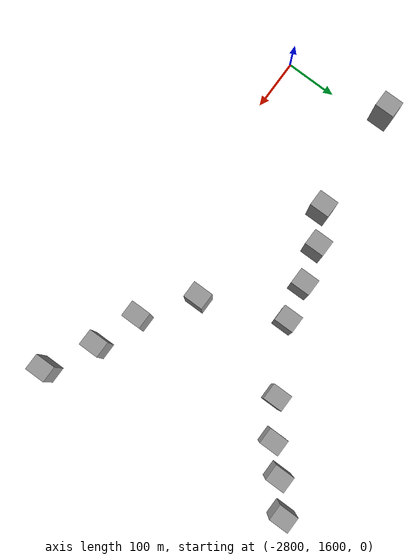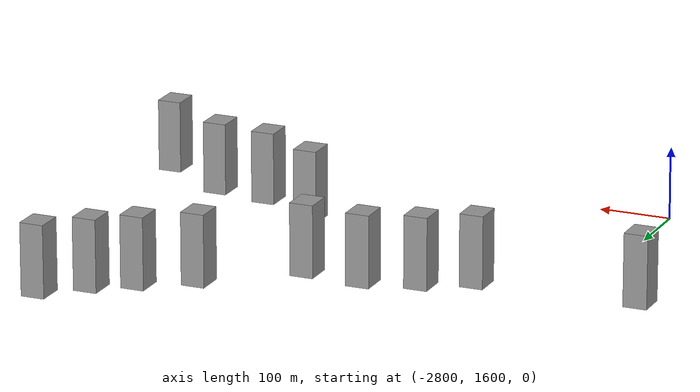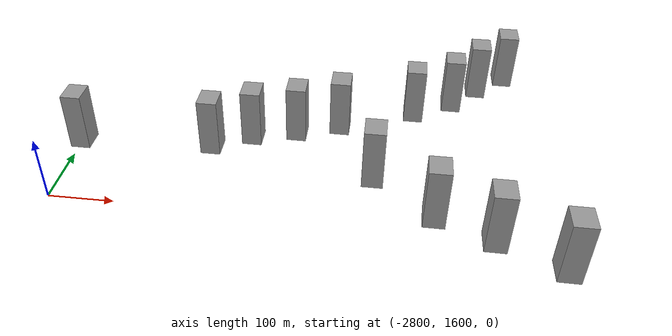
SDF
<sdf version="1.7">
 <world name="default">
  <model name="huge_building_72">
   <link name="link">
    <inertial>
     <mass>137299</mass>
     <inertia>
      <ixx>1.37911e+08</ixx>
      <ixy>0</ixy>
      <ixz>0</ixz>
      <iyy>1.32035e+08</iyy>
      <iyz>0</iyz>
      <izz>3.13216e+07</izz>
     </inertia>
    </inertial>
    <visual name="visual">
     <geometry><box><size>33.3468 40.3177 102.117</size></box></geometry>
     <material>
      <script><name>Gazebo/Grey</name><uri>file://media/materials/scripts/gazebo.material</uri></script>
      <shader type="pixel"/>
     </material>
    </visual>
    <collision name="collision">
     <geometry><box><size>33.3468 40.3177 102.117</size></box></geometry>
     <surface>
      <friction>
       <ode><mu>1</mu><mu2>1</mu2><fdir1>0 0 0</fdir1><slip1>0</slip1><slip2>0</slip2></ode>
       <torsional>
        <coefficient>1</coefficient>
        <patch_radius>0</patch_radius>
        <surface_radius>0</surface_radius>
        <use_patch_radius>1</use_patch_radius>
        <ode><slip>0</slip></ode>
       </torsional>
      </friction>
      <bounce><restitution_coefficient>0</restitution_coefficient><threshold>1e+06</threshold></bounce>
      <contact>
       <collide_without_contact>0</collide_without_contact>
       <collide_without_contact_bitmask>1</collide_without_contact_bitmask>
       <collide_bitmask>1</collide_bitmask>
       <ode>
        <soft_cfm>0</soft_cfm>
        <soft_erp>0.2</soft_erp>
        <kp>1e+13</kp>
        <kd>1</kd>
        <max_vel>0.01</max_vel>
        <min_depth>0</min_depth>
       </ode>
       <bullet>
        <split_impulse>1</split_impulse>
        <split_impulse_penetration_threshold>-0.01</split_impulse_penetration_threshold>
        <soft_cfm>0</soft_cfm>
        <soft_erp>0.2</soft_erp>
        <kp>1e+13</kp>
        <kd>1</kd>
       </bullet>
      </contact>
     </surface>
    </collision>
   </link>
   <static>0</static>
   <pose>-2097.48 2090.02 5 0 -0 0</pose>
  </model>
  <model name="huge_building_73">
   <link name="link">
    <inertial>
     <mass>137299</mass>
     <inertia>
      <ixx>1.37911e+08</ixx>
      <ixy>0</ixy>
      <ixz>0</ixz>
      <iyy>1.32035e+08</iyy>
      <iyz>0</iyz>
      <izz>3.13216e+07</izz>
     </inertia>
    </inertial>
    <visual name="visual">
     <geometry><box><size>33.3468 40.3177 102.117</size></box></geometry>
     <material>
      <script><name>Gazebo/Grey</name><uri>file://media/materials/scripts/gazebo.material</uri></script>
      <shader type="pixel"/>
     </material>
    </visual>
    <collision name="collision">
     <geometry><box><size>33.3468 40.3177 102.117</size></box></geometry>
     <surface>
      <friction>
       <ode><mu>1</mu><mu2>1</mu2><fdir1>0 0 0</fdir1><slip1>0</slip1><slip2>0</slip2></ode>
       <torsional>
        <coefficient>1</coefficient>
        <patch_radius>0</patch_radius>
        <surface_radius>0</surface_radius>
        <use_patch_radius>1</use_patch_radius>
        <ode><slip>0</slip></ode>
       </torsional>
      </friction>
      <bounce><restitution_coefficient>0</restitution_coefficient><threshold>1e+06</threshold></bounce>
      <contact>
       <collide_without_contact>0</collide_without_contact>
       <collide_without_contact_bitmask>1</collide_without_contact_bitmask>
       <collide_bitmask>1</collide_bitmask>
       <ode>
        <soft_cfm>0</soft_cfm>
        <soft_erp>0.2</soft_erp>
        <kp>1e+13</kp>
        <kd>1</kd>
        <max_vel>0.01</max_vel>
        <min_depth>0</min_depth>
       </ode>
       <bullet>
        <split_impulse>1</split_impulse>
        <split_impulse_penetration_threshold>-0.01</split_impulse_penetration_threshold>
        <soft_cfm>0</soft_cfm>
        <soft_erp>0.2</soft_erp>
        <kp>1e+13</kp>
        <kd>1</kd>
       </bullet>
      </contact>
     </surface>
    </collision>
   </link>
   <static>0</static>
   <pose>-2150.63 2042.82 5 0 -0 0</pose>
  </model>
  <model name="huge_building_111">
   <link name="link">
    <inertial>
     <mass>137299</mass>
     <inertia>
      <ixx>1.37911e+08</ixx>
      <ixy>0</ixy>
      <ixz>0</ixz>
      <iyy>1.32035e+08</iyy>
      <iyz>0</iyz>
      <izz>3.13216e+07</izz>
     </inertia>
    </inertial>
    <visual name="visual">
     <geometry><box><size>33.3468 40.3177 102.117</size></box></geometry>
     <material>
      <script><name>Gazebo/Grey</name><uri>file://media/materials/scripts/gazebo.material</uri></script>
      <shader type="pixel"/>
     </material>
    </visual>
    <collision name="collision">
     <geometry><box><size>33.3468 40.3177 102.117</size></box></geometry>
     <surface>
      <friction>
       <ode><mu>1</mu><mu2>1</mu2><fdir1>0 0 0</fdir1><slip1>0</slip1><slip2>0</slip2></ode>
       <torsional>
        <coefficient>1</coefficient>
        <patch_radius>0</patch_radius>
        <surface_radius>0</surface_radius>
        <use_patch_radius>1</use_patch_radius>
        <ode><slip>0</slip></ode>
       </torsional>
      </friction>
      <bounce><restitution_coefficient>0</restitution_coefficient><threshold>1e+06</threshold></bounce>
      <contact>
       <collide_without_contact>0</collide_without_contact>
       <collide_without_contact_bitmask>1</collide_without_contact_bitmask>
       <collide_bitmask>1</collide_bitmask>
       <ode>
        <soft_cfm>0</soft_cfm>
        <soft_erp>0.2</soft_erp>
        <kp>1e+13</kp>
        <kd>1</kd>
        <max_vel>0.01</max_vel>
        <min_depth>0</min_depth>
       </ode>
       <bullet>
        <split_impulse>1</split_impulse>
        <split_impulse_penetration_threshold>-0.01</split_impulse_penetration_threshold>
        <soft_cfm>0</soft_cfm>
        <soft_erp>0.2</soft_erp>
        <kp>1e+13</kp>
        <kd>1</kd>
       </bullet>
      </contact>
     </surface>
    </collision>
   </link>
   <static>0</static>
   <pose>-2197.2 1996.35 0 0 -0 0</pose>
  </model>
  <model name="huge_building_112">
   <link name="link">
    <inertial>
     <mass>137299</mass>
     <inertia>
      <ixx>1.37911e+08</ixx>
      <ixy>0</ixy>
      <ixz>0</ixz>
      <iyy>1.32035e+08</iyy>
      <iyz>0</iyz>
      <izz>3.13216e+07</izz>
     </inertia>
    </inertial>
    <visual name="visual">
     <geometry><box><size>33.3468 40.3177 102.117</size></box></geometry>
     <material>
      <script><name>Gazebo/Grey</name><uri>file://media/materials/scripts/gazebo.material</uri></script>
      <shader type="pixel"/>
     </material>
    </visual>
    <collision name="collision">
     <geometry><box><size>33.3468 40.3177 102.117</size></box></geometry>
     <surface>
      <friction>
       <ode><mu>1</mu><mu2>1</mu2><fdir1>0 0 0</fdir1><slip1>0</slip1><slip2>0</slip2></ode>
       <torsional>
        <coefficient>1</coefficient>
        <patch_radius>0</patch_radius>
        <surface_radius>0</surface_radius>
        <use_patch_radius>1</use_patch_radius>
        <ode><slip>0</slip></ode>
       </torsional>
      </friction>
      <bounce><restitution_coefficient>0</restitution_coefficient><threshold>1e+06</threshold></bounce>
      <contact>
       <collide_without_contact>0</collide_without_contact>
       <collide_without_contact_bitmask>1</collide_without_contact_bitmask>
       <collide_bitmask>1</collide_bitmask>
       <ode>
        <soft_cfm>0</soft_cfm>
        <soft_erp>0.2</soft_erp>
        <kp>1e+13</kp>
        <kd>1</kd>
        <max_vel>0.01</max_vel>
        <min_depth>0</min_depth>
       </ode>
       <bullet>
        <split_impulse>1</split_impulse>
        <split_impulse_penetration_threshold>-0.01</split_impulse_penetration_threshold>
        <soft_cfm>0</soft_cfm>
        <soft_erp>0.2</soft_erp>
        <kp>1e+13</kp>
        <kd>1</kd>
       </bullet>
      </contact>
     </surface>
    </collision>
   </link>
   <static>0</static>
   <pose>-2265.9 1954.4 0 0 -0 0</pose>
  </model>
  <model name="huge_building_113">
   <link name="link">
    <inertial>
     <mass>137299</mass>
     <inertia>
      <ixx>1.37911e+08</ixx>
      <ixy>0</ixy>
      <ixz>0</ixz>
      <iyy>1.32035e+08</iyy>
      <iyz>0</iyz>
      <izz>3.13216e+07</izz>
     </inertia>
    </inertial>
    <visual name="visual">
     <geometry><box><size>33.3468 40.3177 102.117</size></box></geometry>
     <material>
      <script><name>Gazebo/Grey</name><uri>file://media/materials/scripts/gazebo.material</uri></script>
      <shader type="pixel"/>
     </material>
    </visual>
    <collision name="collision">
     <geometry><box><size>33.3468 40.3177 102.117</size></box></geometry>
     <surface>
      <friction>
       <ode><mu>1</mu><mu2>1</mu2><fdir1>0 0 0</fdir1><slip1>0</slip1><slip2>0</slip2></ode>
       <torsional>
        <coefficient>1</coefficient>
        <patch_radius>0</patch_radius>
        <surface_radius>0</surface_radius>
        <use_patch_radius>1</use_patch_radius>
        <ode><slip>0</slip></ode>
       </torsional>
      </friction>
      <bounce><restitution_coefficient>0</restitution_coefficient><threshold>1e+06</threshold></bounce>
      <contact>
       <collide_without_contact>0</collide_without_contact>
       <collide_without_contact_bitmask>1</collide_without_contact_bitmask>
       <collide_bitmask>1</collide_bitmask>
       <ode>
        <soft_cfm>0</soft_cfm>
        <soft_erp>0.2</soft_erp>
        <kp>1e+13</kp>
        <kd>1</kd>
        <max_vel>0.01</max_vel>
        <min_depth>0</min_depth>
       </ode>
       <bullet>
        <split_impulse>1</split_impulse>
        <split_impulse_penetration_threshold>-0.01</split_impulse_penetration_threshold>
        <soft_cfm>0</soft_cfm>
        <soft_erp>0.2</soft_erp>
        <kp>1e+13</kp>
        <kd>1</kd>
       </bullet>
      </contact>
     </surface>
    </collision>
   </link>
   <static>0</static>
   <pose>-2392.93 1885.83 9 0 -0 0</pose>
  </model>
  <model name="huge_building_114">
   <link name="link">
    <inertial>
     <mass>137299</mass>
     <inertia>
      <ixx>1.37911e+08</ixx>
      <ixy>0</ixy>
      <ixz>0</ixz>
      <iyy>1.32035e+08</iyy>
      <iyz>0</iyz>
      <izz>3.13216e+07</izz>
     </inertia>
    </inertial>
    <visual name="visual">
     <geometry><box><size>33.3468 40.3177 102.117</size></box></geometry>
     <material>
      <script><name>Gazebo/Grey</name><uri>file://media/materials/scripts/gazebo.material</uri></script>
      <shader type="pixel"/>
     </material>
    </visual>
    <collision name="collision">
     <geometry><box><size>33.3468 40.3177 102.117</size></box></geometry>
     <surface>
      <friction>
       <ode><mu>1</mu><mu2>1</mu2><fdir1>0 0 0</fdir1><slip1>0</slip1><slip2>0</slip2></ode>
       <torsional>
        <coefficient>1</coefficient>
        <patch_radius>0</patch_radius>
        <surface_radius>0</surface_radius>
        <use_patch_radius>1</use_patch_radius>
        <ode><slip>0</slip></ode>
       </torsional>
      </friction>
      <bounce><restitution_coefficient>0</restitution_coefficient><threshold>1e+06</threshold></bounce>
      <contact>
       <collide_without_contact>0</collide_without_contact>
       <collide_without_contact_bitmask>1</collide_without_contact_bitmask>
       <collide_bitmask>1</collide_bitmask>
       <ode>
        <soft_cfm>0</soft_cfm>
        <soft_erp>0.2</soft_erp>
        <kp>1e+13</kp>
        <kd>1</kd>
        <max_vel>0.01</max_vel>
        <min_depth>0</min_depth>
       </ode>
       <bullet>
        <split_impulse>1</split_impulse>
        <split_impulse_penetration_threshold>-0.01</split_impulse_penetration_threshold>
        <soft_cfm>0</soft_cfm>
        <soft_erp>0.2</soft_erp>
        <kp>1e+13</kp>
        <kd>1</kd>
       </bullet>
      </contact>
     </surface>
    </collision>
   </link>
   <static>0</static>
   <pose>-2466.93 1870.23 0 0 -0 0</pose>
  </model>
  <model name="huge_building_115">
   <link name="link">
    <inertial>
     <mass>137299</mass>
     <inertia>
      <ixx>1.37911e+08</ixx>
      <ixy>0</ixy>
      <ixz>0</ixz>
      <iyy>1.32035e+08</iyy>
      <iyz>0</iyz>
      <izz>3.13216e+07</izz>
     </inertia>
    </inertial>
    <visual name="visual">
     <geometry><box><size>33.3468 40.3177 102.117</size></box></geometry>
     <material>
      <script><name>Gazebo/Grey</name><uri>file://media/materials/scripts/gazebo.material</uri></script>
      <shader type="pixel"/>
     </material>
    </visual>
    <collision name="collision">
     <geometry><box><size>33.3468 40.3177 102.117</size></box></geometry>
     <surface>
      <friction>
       <ode><mu>1</mu><mu2>1</mu2><fdir1>0 0 0</fdir1><slip1>0</slip1><slip2>0</slip2></ode>
       <torsional>
        <coefficient>1</coefficient>
        <patch_radius>0</patch_radius>
        <surface_radius>0</surface_radius>
        <use_patch_radius>1</use_patch_radius>
        <ode><slip>0</slip></ode>
       </torsional>
      </friction>
      <bounce><restitution_coefficient>0</restitution_coefficient><threshold>1e+06</threshold></bounce>
      <contact>
       <collide_without_contact>0</collide_without_contact>
       <collide_without_contact_bitmask>1</collide_without_contact_bitmask>
       <collide_bitmask>1</collide_bitmask>
       <ode>
        <soft_cfm>0</soft_cfm>
        <soft_erp>0.2</soft_erp>
        <kp>1e+13</kp>
        <kd>1</kd>
        <max_vel>0.01</max_vel>
        <min_depth>0</min_depth>
       </ode>
       <bullet>
        <split_impulse>1</split_impulse>
        <split_impulse_penetration_threshold>-0.01</split_impulse_penetration_threshold>
        <soft_cfm>0</soft_cfm>
        <soft_erp>0.2</soft_erp>
        <kp>1e+13</kp>
        <kd>1</kd>
       </bullet>
      </contact>
     </surface>
    </collision>
   </link>
   <static>0</static>
   <pose>-2541.24 1848.61 0 0 -0 0</pose>
  </model>
  <model name="huge_building_116">
   <link name="link">
    <inertial>
     <mass>137299</mass>
     <inertia>
      <ixx>1.37911e+08</ixx>
      <ixy>0</ixy>
      <ixz>0</ixz>
      <iyy>1.32035e+08</iyy>
      <iyz>0</iyz>
      <izz>3.13216e+07</izz>
     </inertia>
    </inertial>
    <visual name="visual">
     <geometry><box><size>33.3468 40.3177 102.117</size></box></geometry>
     <material>
      <script><name>Gazebo/Grey</name><uri>file://media/materials/scripts/gazebo.material</uri></script>
      <shader type="pixel"/>
     </material>
    </visual>
    <collision name="collision">
     <geometry><box><size>33.3468 40.3177 102.117</size></box></geometry>
     <surface>
      <friction>
       <ode><mu>1</mu><mu2>1</mu2><fdir1>0 0 0</fdir1><slip1>0</slip1><slip2>0</slip2></ode>
       <torsional>
        <coefficient>1</coefficient>
        <patch_radius>0</patch_radius>
        <surface_radius>0</surface_radius>
        <use_patch_radius>1</use_patch_radius>
        <ode><slip>0</slip></ode>
       </torsional>
      </friction>
      <bounce><restitution_coefficient>0</restitution_coefficient><threshold>1e+06</threshold></bounce>
      <contact>
       <collide_without_contact>0</collide_without_contact>
       <collide_without_contact_bitmask>1</collide_without_contact_bitmask>
       <collide_bitmask>1</collide_bitmask>
       <ode>
        <soft_cfm>0</soft_cfm>
        <soft_erp>0.2</soft_erp>
        <kp>1e+13</kp>
        <kd>1</kd>
        <max_vel>0.01</max_vel>
        <min_depth>0</min_depth>
       </ode>
       <bullet>
        <split_impulse>1</split_impulse>
        <split_impulse_penetration_threshold>-0.01</split_impulse_penetration_threshold>
        <soft_cfm>0</soft_cfm>
        <soft_erp>0.2</soft_erp>
        <kp>1e+13</kp>
        <kd>1</kd>
       </bullet>
      </contact>
     </surface>
    </collision>
   </link>
   <static>0</static>
   <pose>-2606.31 1813.32 0 0 -0 0</pose>
  </model>
  <model name="huge_building_117">
   <link name="link">
    <inertial>
     <mass>137299</mass>
     <inertia>
      <ixx>1.37911e+08</ixx>
      <ixy>0</ixy>
      <ixz>0</ixz>
      <iyy>1.32035e+08</iyy>
      <iyz>0</iyz>
      <izz>3.13216e+07</izz>
     </inertia>
    </inertial>
    <visual name="visual">
     <geometry><box><size>33.3468 40.3177 102.117</size></box></geometry>
     <material>
      <script><name>Gazebo/Grey</name><uri>file://media/materials/scripts/gazebo.material</uri></script>
      <shader type="pixel"/>
     </material>
    </visual>
    <collision name="collision">
     <geometry><box><size>33.3468 40.3177 102.117</size></box></geometry>
     <surface>
      <friction>
       <ode><mu>1</mu><mu2>1</mu2><fdir1>0 0 0</fdir1><slip1>0</slip1><slip2>0</slip2></ode>
       <torsional>
        <coefficient>1</coefficient>
        <patch_radius>0</patch_radius>
        <surface_radius>0</surface_radius>
        <use_patch_radius>1</use_patch_radius>
        <ode><slip>0</slip></ode>
       </torsional>
      </friction>
      <bounce><restitution_coefficient>0</restitution_coefficient><threshold>1e+06</threshold></bounce>
      <contact>
       <collide_without_contact>0</collide_without_contact>
       <collide_without_contact_bitmask>1</collide_without_contact_bitmask>
       <collide_bitmask>1</collide_bitmask>
       <ode>
        <soft_cfm>0</soft_cfm>
        <soft_erp>0.2</soft_erp>
        <kp>1e+13</kp>
        <kd>1</kd>
        <max_vel>0.01</max_vel>
        <min_depth>0</min_depth>
       </ode>
       <bullet>
        <split_impulse>1</split_impulse>
        <split_impulse_penetration_threshold>-0.01</split_impulse_penetration_threshold>
        <soft_cfm>0</soft_cfm>
        <soft_erp>0.2</soft_erp>
        <kp>1e+13</kp>
        <kd>1</kd>
       </bullet>
      </contact>
     </surface>
    </collision>
   </link>
   <static>0</static>
   <pose>-2832.83 1800.72 0 0 -0 0</pose>
  </model>
  <model name="huge_building_123">
   <link name="link">
    <inertial>
     <mass>137299</mass>
     <inertia>
      <ixx>1.37911e+08</ixx>
      <ixy>0</ixy>
      <ixz>0</ixz>
      <iyy>1.32035e+08</iyy>
      <iyz>0</iyz>
      <izz>3.13216e+07</izz>
     </inertia>
    </inertial>
    <visual name="visual">
     <geometry><box><size>33.3468 40.3177 102.117</size></box></geometry>
     <material>
      <script><name>Gazebo/Grey</name><uri>file://media/materials/scripts/gazebo.material</uri></script>
      <shader type="pixel"/>
     </material>
    </visual>
    <collision name="collision">
     <geometry><box><size>33.3468 40.3177 102.117</size></box></geometry>
     <surface>
      <friction>
       <ode><mu>1</mu><mu2>1</mu2><fdir1>0 0 0</fdir1><slip1>0</slip1><slip2>0</slip2></ode>
       <torsional>
        <coefficient>1</coefficient>
        <patch_radius>0</patch_radius>
        <surface_radius>0</surface_radius>
        <use_patch_radius>1</use_patch_radius>
        <ode><slip>0</slip></ode>
       </torsional>
      </friction>
      <bounce><restitution_coefficient>0</restitution_coefficient><threshold>1e+06</threshold></bounce>
      <contact>
       <collide_without_contact>0</collide_without_contact>
       <collide_without_contact_bitmask>1</collide_without_contact_bitmask>
       <collide_bitmask>1</collide_bitmask>
       <ode>
        <soft_cfm>0</soft_cfm>
        <soft_erp>0.2</soft_erp>
        <kp>1e+13</kp>
        <kd>1</kd>
        <max_vel>0.01</max_vel>
        <min_depth>0</min_depth>
       </ode>
       <bullet>
        <split_impulse>1</split_impulse>
        <split_impulse_penetration_threshold>-0.01</split_impulse_penetration_threshold>
        <soft_cfm>0</soft_cfm>
        <soft_erp>0.2</soft_erp>
        <kp>1e+13</kp>
        <kd>1</kd>
       </bullet>
      </contact>
     </surface>
    </collision>
   </link>
   <static>0</static>
   <pose>-2053.36 1577.12 20 0 -0 0</pose>
  </model>
  <model name="huge_building_124">
   <link name="link">
    <inertial>
     <mass>137299</mass>
     <inertia>
      <ixx>1.37911e+08</ixx>
      <ixy>0</ixy>
      <ixz>0</ixz>
      <iyy>1.32035e+08</iyy>
      <iyz>0</iyz>
      <izz>3.13216e+07</izz>
     </inertia>
    </inertial>
    <visual name="visual">
     <geometry><box><size>33.3468 40.3177 102.117</size></box></geometry>
     <material>
      <script><name>Gazebo/Grey</name><uri>file://media/materials/scripts/gazebo.material</uri></script>
      <shader type="pixel"/>
     </material>
    </visual>
    <collision name="collision">
     <geometry><box><size>33.3468 40.3177 102.117</size></box></geometry>
     <surface>
      <friction>
       <ode><mu>1</mu><mu2>1</mu2><fdir1>0 0 0</fdir1><slip1>0</slip1><slip2>0</slip2></ode>
       <torsional>
        <coefficient>1</coefficient>
        <patch_radius>0</patch_radius>
        <surface_radius>0</surface_radius>
        <use_patch_radius>1</use_patch_radius>
        <ode><slip>0</slip></ode>
       </torsional>
      </friction>
      <bounce><restitution_coefficient>0</restitution_coefficient><threshold>1e+06</threshold></bounce>
      <contact>
       <collide_without_contact>0</collide_without_contact>
       <collide_without_contact_bitmask>1</collide_without_contact_bitmask>
       <collide_bitmask>1</collide_bitmask>
       <ode>
        <soft_cfm>0</soft_cfm>
        <soft_erp>0.2</soft_erp>
        <kp>1e+13</kp>
        <kd>1</kd>
        <max_vel>0.01</max_vel>
        <min_depth>0</min_depth>
       </ode>
       <bullet>
        <split_impulse>1</split_impulse>
        <split_impulse_penetration_threshold>-0.01</split_impulse_penetration_threshold>
        <soft_cfm>0</soft_cfm>
        <soft_erp>0.2</soft_erp>
        <kp>1e+13</kp>
        <kd>1</kd>
       </bullet>
      </contact>
     </surface>
    </collision>
   </link>
   <static>0</static>
   <pose>-2145.92 1627.07 14 0 -0 0</pose>
  </model>
  <model name="huge_building_125">
   <link name="link">
    <inertial>
     <mass>137299</mass>
     <inertia>
      <ixx>1.37911e+08</ixx>
      <ixy>0</ixy>
      <ixz>0</ixz>
      <iyy>1.32035e+08</iyy>
      <iyz>0</iyz>
      <izz>3.13216e+07</izz>
     </inertia>
    </inertial>
    <visual name="visual">
     <geometry><box><size>33.3468 40.3177 102.117</size></box></geometry>
     <material>
      <script><name>Gazebo/Grey</name><uri>file://media/materials/scripts/gazebo.material</uri></script>
      <shader type="pixel"/>
     </material>
    </visual>
    <collision name="collision">
     <geometry><box><size>33.3468 40.3177 102.117</size></box></geometry>
     <surface>
      <friction>
       <ode><mu>1</mu><mu2>1</mu2><fdir1>0 0 0</fdir1><slip1>0</slip1><slip2>0</slip2></ode>
       <torsional>
        <coefficient>1</coefficient>
        <patch_radius>0</patch_radius>
        <surface_radius>0</surface_radius>
        <use_patch_radius>1</use_patch_radius>
        <ode><slip>0</slip></ode>
       </torsional>
      </friction>
      <bounce><restitution_coefficient>0</restitution_coefficient><threshold>1e+06</threshold></bounce>
      <contact>
       <collide_without_contact>0</collide_without_contact>
       <collide_without_contact_bitmask>1</collide_without_contact_bitmask>
       <collide_bitmask>1</collide_bitmask>
       <ode>
        <soft_cfm>0</soft_cfm>
        <soft_erp>0.2</soft_erp>
        <kp>1e+13</kp>
        <kd>1</kd>
        <max_vel>0.01</max_vel>
        <min_depth>0</min_depth>
       </ode>
       <bullet>
        <split_impulse>1</split_impulse>
        <split_impulse_penetration_threshold>-0.01</split_impulse_penetration_threshold>
        <soft_cfm>0</soft_cfm>
        <soft_erp>0.2</soft_erp>
        <kp>1e+13</kp>
        <kd>1</kd>
       </bullet>
      </contact>
     </surface>
    </collision>
   </link>
   <static>0</static>
   <pose>-2233.28 1658.09 21 0 -0 0</pose>
  </model>
  <model name="huge_building_126">
   <link name="link">
    <inertial>
     <mass>137299</mass>
     <inertia>
      <ixx>1.37911e+08</ixx>
      <ixy>0</ixy>
      <ixz>0</ixz>
      <iyy>1.32035e+08</iyy>
      <iyz>0</iyz>
      <izz>3.13216e+07</izz>
     </inertia>
    </inertial>
    <visual name="visual">
     <geometry><box><size>33.3468 40.3177 102.117</size></box></geometry>
     <material>
      <script><name>Gazebo/Grey</name><uri>file://media/materials/scripts/gazebo.material</uri></script>
      <shader type="pixel"/>
     </material>
    </visual>
    <collision name="collision">
     <geometry><box><size>33.3468 40.3177 102.117</size></box></geometry>
     <surface>
      <friction>
       <ode><mu>1</mu><mu2>1</mu2><fdir1>0 0 0</fdir1><slip1>0</slip1><slip2>0</slip2></ode>
       <torsional>
        <coefficient>1</coefficient>
        <patch_radius>0</patch_radius>
        <surface_radius>0</surface_radius>
        <use_patch_radius>1</use_patch_radius>
        <ode><slip>0</slip></ode>
       </torsional>
      </friction>
      <bounce><restitution_coefficient>0</restitution_coefficient><threshold>1e+06</threshold></bounce>
      <contact>
       <collide_without_contact>0</collide_without_contact>
       <collide_without_contact_bitmask>1</collide_without_contact_bitmask>
       <collide_bitmask>1</collide_bitmask>
       <ode>
        <soft_cfm>0</soft_cfm>
        <soft_erp>0.2</soft_erp>
        <kp>1e+13</kp>
        <kd>1</kd>
        <max_vel>0.01</max_vel>
        <min_depth>0</min_depth>
       </ode>
       <bullet>
        <split_impulse>1</split_impulse>
        <split_impulse_penetration_threshold>-0.01</split_impulse_penetration_threshold>
        <soft_cfm>0</soft_cfm>
        <soft_erp>0.2</soft_erp>
        <kp>1e+13</kp>
        <kd>1</kd>
       </bullet>
      </contact>
     </surface>
    </collision>
   </link>
   <static>0</static>
   <pose>-2327.88 1728.44 28 0 -0 0</pose>
  </model>
 </world>
</sdf>
